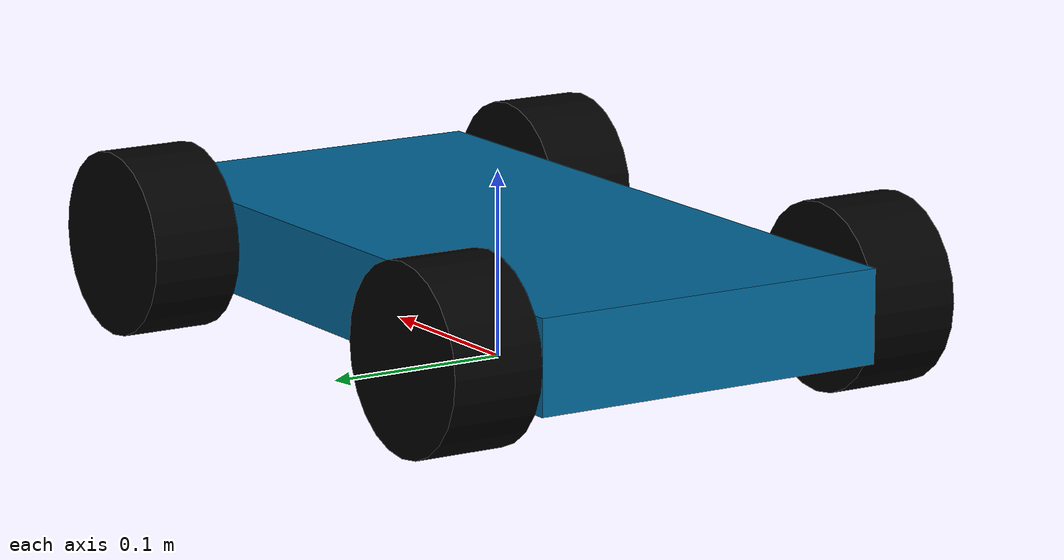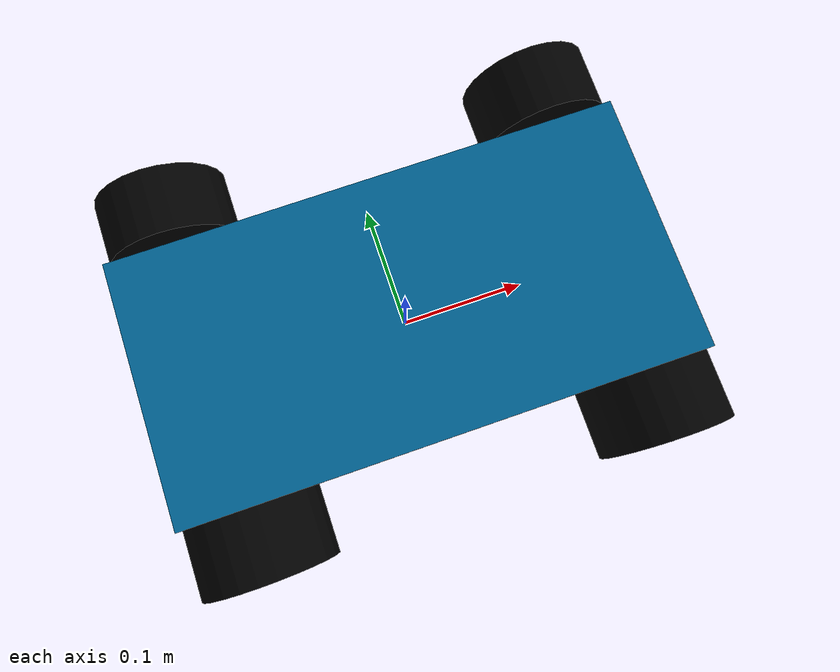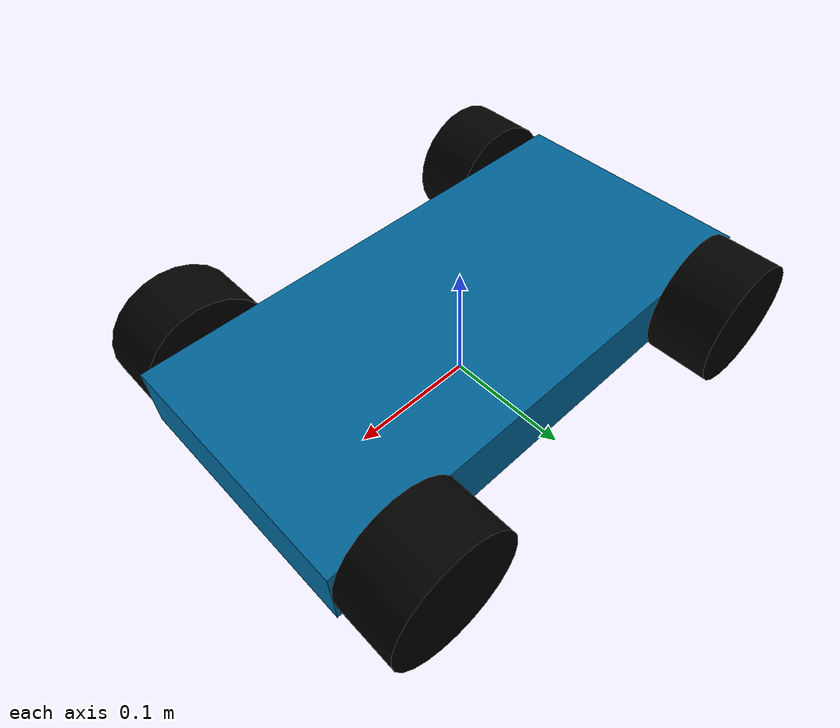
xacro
<?xml version="1.0"?>
<!-- XML namespaces -->
<robot xmlns:xacro="http://www.ros.org/wiki/xacro" name="traverser" >

    <!-- Include xacro files-->
    <xacro:include filename="$(find robot_common)/urdf/materials.urdf.xacro" />
    <xacro:include filename="$(find robot_common)/urdf/gazebo_ros_control.urdf.xacro" />
    <xacro:include filename="$(find traverser)/description/urdf/traverser.urdf.xacro" />

    <link name="base_link" />

    <xacro:property name="traverser_wheel_radius" value="0.05"/>

    <xacro:traverser name="base_body" parent="base_link"
                     wheel_radius="${traverser_wheel_radius}">
        <!--This defines the co-ordinate transform from base_body to base_link -->
        <!--base link is on ground z = 0 and base_body_link is offset to z = `traverser_wheel_radius`.
            ROS Nav needs a frame at axis of rotation on ground, which in our case is base_link -->
        <origin xyz="0 0 ${traverser_wheel_radius}" rpy="0 0 0" />
    </xacro:traverser>

</robot>

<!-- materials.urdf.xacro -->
<robot xmlns:xacro="http://www.ros.org/wiki/xacro">

    <material name="black">
        <color rgba="0 0 0 1"/>
    </material>

    <material name="blue">
        <color rgba="0 0.4 0.6 1"/>
    </material>

</robot>

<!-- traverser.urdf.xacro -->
<!-- XML namespaces -->
<robot xmlns:xacro="http://www.ros.org/wiki/xacro">
    <xacro:macro name="traverser" params="name parent *origin
                                          platform_length:=0.4
                                          platform_width:=0.2
                                          platform_height:=0.05
                                          wheel_thickness:=0.05
                                          wheel_radius:=0.05
                                          wheel_height:=0.025
                                          gazebo_platform_material:=Gazebo/Blue
                                          gazebo_wheel_material:=Gazebo/Black">

        <!-- Include xacro files-->
        <xacro:include filename="$(find robot_common)/urdf/common.urdf.xacro" />
        <xacro:include filename="$(find traverser)/description/urdf/actuators/wheel.urdf.xacro" />

        <xacro:property name="platform_density" value="7850.0"/> <!-- steel -->
        <xacro:property name="platform_mass"
                        value="${platform_density * platform_length * platform_width * platform_height}"/>

        <gazebo>
            <plugin name="traverser_controller" filename="libtraverser_controller_plugin.so">
                <commandTopic>/cmd_vel</commandTopic>
                <odometryTopic>/odom</odometryTopic>
                <odometryFrame>/odom</odometryFrame>
                <odometryRate>20.0</odometryRate>
                <robotBaseFrame>/base_link</robotBaseFrame>
            </plugin>
        </gazebo>

        <joint name="${parent}_to_${name}_joint" type="fixed">
            <parent link="${parent}"/>
            <child link="${name}_link"/>
            <xacro:insert_block name="origin" />
        </joint>

        <link name="${name}_link">
            <visual>
                <geometry>
                    <box size="${platform_length}
                               ${platform_width}
                               ${platform_height}"/>
                </geometry>
                <origin rpy="0 0 0" xyz="0 0 ${(platform_height/2)-wheel_height}"/>
                <material name="blue"/>
            </visual>

            <collision>
                <geometry>
                    <box size="${platform_length}
                               ${platform_width}
                               ${platform_height}"/>
                </geometry>
                <origin rpy="0 0 0" xyz="0 0 ${(platform_height/2)-wheel_height}"/>
            </collision>

            <xacro:cuboid_inertia mass="${platform_mass}" length="${platform_length}"
                                  breadth="${platform_width}"
                                  height="${platform_height}" />

        </link>

        <gazebo reference="${name}_link">
            <material>${gazebo_platform_material}</material>
        </gazebo>

        <!-- Wheels -->
        <xacro:wheel name="right_front" parent="${name}_link"
                     length="${wheel_thickness}" radius="${wheel_radius}"
                     material_name="black"
                     gazebo_material_name="${gazebo_wheel_material}">
            <origin xyz="${(platform_length/2)-wheel_radius}
                         ${-1*((platform_width/2)+(wheel_thickness/2))}
                         0"
                    rpy="${-pi/2} 0 0" />
        </xacro:wheel>

        <xacro:wheel name="left_front" parent="${name}_link"
                     length="${wheel_thickness}" radius="${wheel_radius}"
                     material_name="black"
                     gazebo_material_name="${gazebo_wheel_material}">
            <origin xyz="${(platform_length/2)-wheel_radius}
                         ${1*((platform_width/2)+(wheel_thickness/2))}
                         0"
                    rpy="${-pi/2} 0 0" />
        </xacro:wheel>

        <xacro:wheel name="right_back" parent="${name}_link"
                     length="${wheel_thickness}" radius="${wheel_radius}"
                     material_name="black"
                     gazebo_material_name="${gazebo_wheel_material}">
            <origin xyz="${-1*((platform_length/2)-wheel_radius)}
                         ${-1*((platform_width/2)+(wheel_thickness/2))}
                         0"
                    rpy="${-pi/2} 0 0" />
        </xacro:wheel>

        <xacro:wheel name="left_back" parent="${name}_link"
                     length="${wheel_thickness}" radius="${wheel_radius}"
                     material_name="black"
                     gazebo_material_name="${gazebo_wheel_material}">
            <origin xyz="${-1*((platform_length/2)-wheel_radius)}
                         ${1*((platform_width/2)+(wheel_thickness/2))}
                         0"
                    rpy="${-pi/2} 0 0" />
        </xacro:wheel>
    </xacro:macro>
</robot>

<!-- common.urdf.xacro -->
<!-- XML namespaces -->
<robot xmlns:xacro="http://www.ros.org/wiki/xacro">

    <xacro:macro name="cylinder_inertia" params="mass length radius
        center_of_mass_x:=0 center_of_mass_y:=0 center_of_mass_z:=0
        center_of_mass_roll:=0 center_of_mass_pitch:=0 center_of_mass_yaw:=0">
        <inertial>
            <origin xyz="${center_of_mass_x} ${center_of_mass_y} ${center_of_mass_z}"
                    rpy="${center_of_mass_roll} ${center_of_mass_pitch} ${center_of_mass_yaw}"/>
            <mass value="${mass}" />
            <inertia ixx="${(mass/12)*(3*radius*radius + length*length)}"
                     iyy="${(mass/12)*(3*radius*radius + length*length)}"
                     iyz="0.0" ixy="0.0" ixz="0.0"
                     izz="${(mass/2)*(radius*radius)}" />
        </inertial>
    </xacro:macro>

    <xacro:macro name="cuboid_inertia" params="mass length breadth height
        center_of_mass_x:=0 center_of_mass_y:=0 center_of_mass_z:=0
        center_of_mass_roll:=0 center_of_mass_pitch:=0 center_of_mass_yaw:=0">
        <inertial>
            <origin xyz="${center_of_mass_x} ${center_of_mass_y} ${center_of_mass_z}"
                    rpy="${center_of_mass_roll} ${center_of_mass_pitch} ${center_of_mass_yaw}"/>
            <mass value="${mass}" />
            <inertia ixx="${(mass/12)*(breadth*breadth + height*height)}"
                     iyy="${(mass/12)*(height*height + length*length)}"
                     iyz="0.0" ixy="0.0" ixz="0.0"
                     izz="${(mass/12)*(breadth*breadth + length*length)}" />
        </inertial>
    </xacro:macro>

    <xacro:macro name="sphere_inertia" params="mass radius
        center_of_mass_x:=0 center_of_mass_y:=0 center_of_mass_z:=0
        center_of_mass_roll:=0 center_of_mass_pitch:=0 center_of_mass_yaw:=0">
        <inertial>
            <origin xyz="${center_of_mass_x} ${center_of_mass_y} ${center_of_mass_z}"
                    rpy="${center_of_mass_roll} ${center_of_mass_pitch} ${center_of_mass_yaw}"/>
            <mass value="${mass}" />
            <inertia ixx="${(mass*0.4)*(radius*radius)}"
                     iyy="${(mass*0.4)*(radius*radius)}"
                     iyz="0.0" ixy="0.0" ixz="0.0"
                     izz="${(mass*0.4)*(radius*radius)}" />
        </inertial>
    </xacro:macro>

</robot>

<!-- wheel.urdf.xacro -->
<!-- XML namespaces -->
<robot xmlns:xacro="http://www.ros.org/wiki/xacro">
    <xacro:macro name="wheel" params="name parent *origin
                                      length:=0.05
                                      radius:=0.05
                                      material_name:=black
                                      gazebo_material_name:=Gazebo/Black">

        <xacro:property name="wheel_density" value="1522.0"/> <!-- rubber -->
        <xacro:property name="wheel_mass"
                        value="${wheel_density * pi * radius * radius * length}"/>

        <joint name="${parent}_to_${name}_wheel_joint" type="continuous">
            <axis xyz="0 0 1"/>
            <parent link="${parent}"/>
            <child link="${name}_wheel_link"/>
            <xacro:insert_block name="origin" />
        </joint>

        <link name="${name}_wheel_link">
            <visual>
                <geometry>
                    <cylinder length="${length}" radius="${radius}"/>
                </geometry>
                <material name="${material_name}"/>
            </visual>

            <collision>
                <geometry>
                    <cylinder length="${length}" radius="${radius}"/>
                </geometry>
            </collision>

            <xacro:cylinder_inertia mass="${wheel_mass}" radius="${radius}"
                                    length="${length}" />
        </link>

        <gazebo reference="${name}_wheel_link">
            <material>${gazebo_material_name}</material>
            <mu1>0.0</mu1>
            <mu2>0.0</mu2>
        </gazebo>

    </xacro:macro>
</robot>
